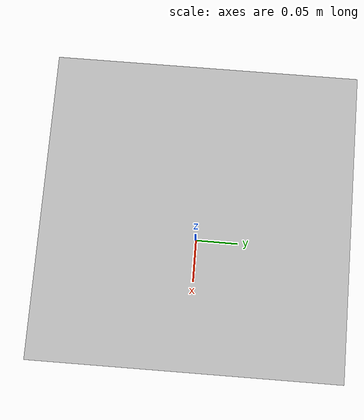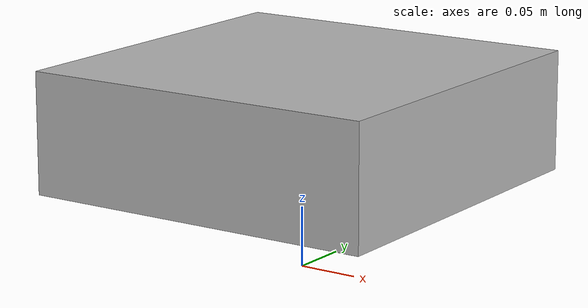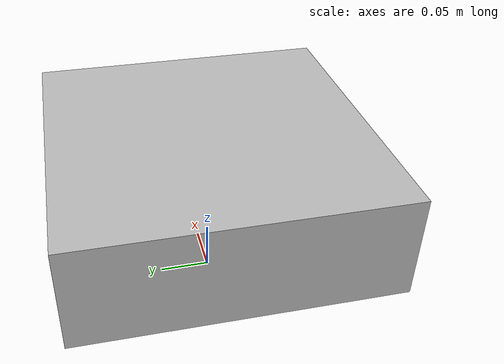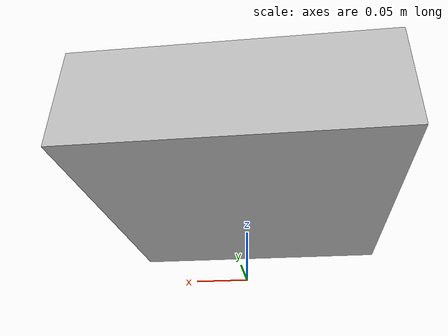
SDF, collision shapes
<?xml version="1.0"?>
<sdf version="1.6">
<model name="rmf_unipilot">
    <self_collide>true</self_collide>
    <pose>0 0 0.121078 0 0 0</pose>

    <frame name="rmf_unipilot" attached_to='base_link'>
        <pose>0 0 0 0 0 0</pose>
    </frame>

    <link name="base_link">
        <pose frame="">0 0 0 0 -0 0</pose>
        <inertial>
            <pose frame="">0 0 0 0 -0 0</pose>
            <mass>2.10</mass>
            <inertia>
                <ixx>0.017</ixx>
                <ixy>0</ixy>
                <ixz>0</ixz>
                <iyy>0.018</iyy>
                <iyz>0</iyz>
                <izz>0.028</izz>
            </inertia>
        </inertial>
        <collision name="base_link_inertia_collision">
            <pose frame="">0 0 0 0 -0 0</pose>
            <geometry>
                <box><size>0.3 0.3 0.1</size></box>
            </geometry>
        </collision>
        <visual name="base_link_inertia_visual">
            <pose frame="">0 0 0 0 -0 0</pose>
            <geometry>
                <mesh>
                    <scale>1 1 1</scale>
                    <uri>meshes/rmf.dae</uri>
                </mesh>
            </geometry>
        </visual>

        <visual name="laser_visual">
            <pose>-0.15 0 0.05 0 1.57 3.1416</pose>
            <geometry>
                <cylinder>
                    <radius>0.03</radius>
                    <length>0.1</length>
                </cylinder>
            </geometry>
        </visual>
        <sensor name="rgb_cam" type="camera">
            <pose>0.18 0 -0.025 0 0 0</pose>
            <always_on>1</always_on>
            <update_rate>20</update_rate>
            <camera name="rgb_cam">
                <horizontal_fov>1.52</horizontal_fov>
                <image>
                    <width>480</width>
                    <height>270</height>
                    <format>R8G8B8</format>
                </image>
                <clip>
                    <near>0.02</near>
                    <far>20</far>
                </clip>
                <optical_frame_id>rmf_unipilot/base_link/rgb_cam/optical</optical_frame_id>
            </camera>
        </sensor>
        <sensor name="depth_cam" type="depth_camera">
            <pose>0.18 0 -0.025 0 0 0</pose>
            <always_on>1</always_on>
            <update_rate>20</update_rate>
            <camera name="depth_cam">
                <horizontal_fov>1.52</horizontal_fov>
                <image>
                    <width>480</width>
                    <height>270</height>
                    <format>R_FLOAT32</format>
                </image>
                <clip>
                    <near>0.02</near>
                    <far>20</far>
                </clip>
                <optical_frame_id>rmf_unipilot/base_link/depth_cam/optical</optical_frame_id>
            </camera>
        </sensor>
        <sensor name="lidar" type="gpu_ray">
            <pose>-0.15 0 0.05 0 1.57 3.1416</pose>
            <always_on>1</always_on>
            <update_rate>10</update_rate>
            <lidar>
                <scan>
                    <horizontal>
                        <samples>500</samples>
                        <resolution>1</resolution>
                        <min_angle>-3.1416</min_angle>
                        <max_angle>3.1416</max_angle>
                    </horizontal>
                    <vertical>
                        <samples>48</samples>
                        <resolution>1</resolution>
                        <min_angle>0</min_angle>
                        <max_angle>1.5708</max_angle>
                    </vertical>
                </scan>
                <range>
                    <min>0.17</min>
                    <max>100</max>
                    <resolution>0.005</resolution>
                </range>
                <noise>
                    <type>gaussian</type>
                    <mean>0</mean>
                    <stddev>0.001</stddev>
                </noise>
            </lidar>
        </sensor>
        <sensor name="contact" type="contact">
            <always_on>1</always_on>
            <update_rate>50</update_rate>
            <contact>
                <collision>base_link_inertia_collision</collision>
                <topic>/rmf_unipilot/contact</topic>
            </contact>
        </sensor>
        <sensor name="imu" type="imu">
            <always_on>1</always_on>
            <update_rate>200</update_rate>
            <imu>
                <angular_velocity>
                    <x><noise type="gaussian"><mean>0</mean><stddev>0.00004</stddev></noise></x>
                    <y><noise type="gaussian"><mean>0</mean><stddev>0.00004</stddev></noise></y>
                    <z><noise type="gaussian"><mean>0</mean><stddev>0.00004</stddev></noise></z>
                </angular_velocity>
                <linear_acceleration>
                    <x><noise type="gaussian"><mean>0</mean><stddev>0.01</stddev></noise></x>
                    <y><noise type="gaussian"><mean>0</mean><stddev>0.01</stddev></noise></y>
                    <z><noise type="gaussian"><mean>0</mean><stddev>0.01</stddev></noise></z>
                </linear_acceleration>
            </imu>
        </sensor>
    </link>

    <!-- rotors -->
    <link name="rotor_0">
        <pose frame="">0.09 -0.09 -0.005 0 0 0</pose>
        <inertial>
            <pose frame="">0 0 0 0 -0 0</pose>
            <mass>0.005</mass>
            <inertia>
                <ixx>9.75e-07</ixx>
                <ixy>0</ixy>
                <ixz>0</ixz>
                <iyy>8.13545e-05</iyy>
                <iyz>0</iyz>
                <izz>8.22545e-05</izz>
            </inertia>
        </inertial>
        <collision name="rotor_0_collision">
            <pose frame="">0 0 0 0 -0 0</pose>
            <geometry>
                <cylinder>
                    <length>0.005</length>
                    <radius>0.06</radius>
                </cylinder>
            </geometry>
            <surface>
                <contact>
                    <ode />
                </contact>
                <friction>
                    <ode />
                </friction>
            </surface>
        </collision>
        <visual name="rotor_0_visual">
            <pose frame="">0 0 0 0 -0 0</pose>
            <geometry>
                <mesh>
                    <scale>1 1 1</scale>
                    <uri>meshes/propeller_ccw.dae</uri>
                </mesh>
            </geometry>
            <material>
                <diffuse>1 0 0 1</diffuse>
                <script>
                    <name>Gazebo/Red</name>
                    <uri>file://media/materials/scripts/gazebo.material</uri>
                </script>
            </material>
            <cast_shadows>0</cast_shadows>
        </visual>
        <gravity>1</gravity>
        <velocity_decay />
    </link>
    <joint name="rotor_0_joint" type="revolute">
        <child>rotor_0</child>
        <parent>base_link</parent>
        <axis>
            <xyz>0 0 1</xyz>
            <limit>
                <lower>-1e+16</lower>
                <upper>1e+16</upper>
            </limit>
            <dynamics>
                <spring_reference>0</spring_reference>
                <spring_stiffness>0</spring_stiffness>
            </dynamics>
            <use_parent_model_frame>1</use_parent_model_frame>
        </axis>
    </joint>
    <link name="rotor_1">
        <pose frame="">-0.09 0.09 0.045 0 0 0</pose>
        <inertial>
            <pose frame="">0 0 0 0 -0 0</pose>
            <mass>0.005</mass>
            <inertia>
                <ixx>9.75e-07</ixx>
                <ixy>0</ixy>
                <ixz>0</ixz>
                <iyy>8.13545e-05</iyy>
                <iyz>0</iyz>
                <izz>8.22545e-05</izz>
            </inertia>
        </inertial>
        <collision name="rotor_1_collision">
            <pose frame="">0 0 0 0 -0 0</pose>
            <geometry>
                <cylinder>
                    <length>0.005</length>
                    <radius>0.06</radius>
                </cylinder>
            </geometry>
            <surface>
                <contact>
                    <ode />
                </contact>
                <friction>
                    <ode />
                </friction>
            </surface>
        </collision>
        <visual name="rotor_1_visual">
            <pose frame="">0 0 0 0 -0 0</pose>
            <geometry>
                <mesh>
                    <scale>1 1 1</scale>
                    <uri>meshes/propeller_ccw.dae</uri>
                </mesh>
            </geometry>
            <material>
                <diffuse>0 0 1 1</diffuse>
                <script>
                    <name>Gazebo/Blue</name>
                    <uri>file://media/materials/scripts/gazebo.material</uri>
                </script>
            </material>
            <cast_shadows>0</cast_shadows>
        </visual>
        <gravity>1</gravity>
        <velocity_decay />
    </link>
    <joint name="rotor_1_joint" type="revolute">
        <child>rotor_1</child>
        <parent>base_link</parent>
        <axis>
            <xyz>0 0 1</xyz>
            <limit>
                <lower>-1e+16</lower>
                <upper>1e+16</upper>
            </limit>
            <dynamics>
                <spring_reference>0</spring_reference>
                <spring_stiffness>0</spring_stiffness>
            </dynamics>
            <use_parent_model_frame>1</use_parent_model_frame>
        </axis>
    </joint>
    <link name="rotor_2">
        <pose frame="">0.09 0.09 -0.005 0 0 0</pose>
        <inertial>
            <pose frame="">0 0 0 0 -0 0</pose>
            <mass>0.005</mass>
            <inertia>
                <ixx>9.75e-07</ixx>
                <ixy>0</ixy>
                <ixz>0</ixz>
                <iyy>8.13545e-05</iyy>
                <iyz>0</iyz>
                <izz>8.22545e-05</izz>
            </inertia>
        </inertial>
        <collision name="rotor_2_collision">
            <pose frame="">0 0 0 0 -0 0</pose>
            <geometry>
                <cylinder>
                    <length>0.005</length>
                    <radius>0.06</radius>
                </cylinder>
            </geometry>
            <surface>
                <contact>
                    <ode />
                </contact>
                <friction>
                    <ode />
                </friction>
            </surface>
        </collision>
        <visual name="rotor_2_visual">
            <pose frame="">0 0 0 0 -0 0</pose>
            <geometry>
                <mesh>
                    <scale>1 1 1</scale>
                    <uri>meshes/propeller_cw.dae</uri>
                </mesh>
            </geometry>
            <material>
                <diffuse>1 0 0 1</diffuse>
                <script>
                    <name>Gazebo/Red</name>
                    <uri>file://media/materials/scripts/gazebo.material</uri>
                </script>
            </material>
            <cast_shadows>0</cast_shadows>
        </visual>
        <gravity>1</gravity>
        <velocity_decay />
    </link>
    <joint name="rotor_2_joint" type="revolute">
        <child>rotor_2</child>
        <parent>base_link</parent>
        <axis>
            <xyz>0 0 1</xyz>
            <limit>
                <lower>-1e+16</lower>
                <upper>1e+16</upper>
            </limit>
            <dynamics>
                <spring_reference>0</spring_reference>
                <spring_stiffness>0</spring_stiffness>
            </dynamics>
            <use_parent_model_frame>1</use_parent_model_frame>
        </axis>
    </joint>
    <link name="rotor_3">
        <pose frame="">-0.09 -0.09 0.045 0 0 0</pose>
        <inertial>
            <pose frame="">0 0 0 0 -0 0</pose>
            <mass>0.005</mass>
            <inertia>
                <ixx>9.75e-07</ixx>
                <ixy>0</ixy>
                <ixz>0</ixz>
                <iyy>8.13545e-05</iyy>
                <iyz>0</iyz>
                <izz>8.22545e-05</izz>
            </inertia>
        </inertial>
        <collision name="rotor_3_collision">
            <pose frame="">0 0 0 0 -0 0</pose>
            <geometry>
                <cylinder>
                    <length>0.005</length>
                    <radius>0.06</radius>
                </cylinder>
            </geometry>
            <surface>
                <contact>
                    <ode />
                </contact>
                <friction>
                    <ode />
                </friction>
            </surface>
        </collision>
        <visual name="rotor_3_visual">
            <pose frame="">0 0 0 0 -0 0</pose>
            <geometry>
                <mesh>
                    <scale>1 1 1</scale>
                    <uri>meshes/propeller_cw.dae</uri>
                </mesh>
            </geometry>
            <material>
                <diffuse>0 0 1 1</diffuse>
                <script>
                    <name>Gazebo/Blue</name>
                    <uri>file://media/materials/scripts/gazebo.material</uri>
                </script>
            </material>
            <cast_shadows>0</cast_shadows>
        </visual>
        <gravity>1</gravity>
        <velocity_decay />
    </link>
    <joint name="rotor_3_joint" type="revolute">
        <child>rotor_3</child>
        <parent>base_link</parent>
        <axis>
            <xyz>0 0 1</xyz>
            <limit>
                <lower>-1e+16</lower>
                <upper>1e+16</upper>
            </limit>
            <dynamics>
                <spring_reference>0</spring_reference>
                <spring_stiffness>0</spring_stiffness>
            </dynamics>
            <use_parent_model_frame>1</use_parent_model_frame>
        </axis>
    </joint>

    <!-- plugins -->

    <plugin filename="libgz-sim-pose-publisher-system.so" name="gz::sim::systems::PosePublisher">
        <publish_link_pose>true</publish_link_pose>
        <publish_sensor_pose>true</publish_sensor_pose>
        <publish_collision_pose>false</publish_collision_pose>
        <publish_visual_pose>false</publish_visual_pose>
        <publish_nested_model_pose>true</publish_nested_model_pose>
        <use_pose_vector_msg>true</use_pose_vector_msg>
        <static_publisher>false</static_publisher>
        <update_frequency>200</update_frequency>
    </plugin>

    <plugin filename="libgz-sim-odometry-publisher-system.so" name="gz::sim::systems::OdometryPublisher">
        <odom_frame>rmf_unipilot/odom</odom_frame>
        <robot_base_frame>rmf_unipilot_odom</robot_base_frame>
        <dimensions>3</dimensions>
        <odom_publish_frequency>100</odom_publish_frequency>
    </plugin>

    <plugin filename="libgz-sim-multicopter-motor-model-system.so" name="gz::sim::systems::MulticopterMotorModel">
        <robotNamespace>model/rmf_unipilot</robotNamespace>
        <commandSubTopic>cmd/motor</commandSubTopic>
        <jointName>rotor_0_joint</jointName>
        <linkName>rotor_0</linkName>
        <turningDirection>ccw</turningDirection>
        <timeConstantUp>0.003</timeConstantUp>
        <timeConstantDown>0.0018</timeConstantDown>
        <maxRotVelocity>750.0</maxRotVelocity>
        <motorConstant>0.02246</motorConstant>
        <momentConstant>0.016754</momentConstant>
        <motorNumber>0</motorNumber>
        <rotorDragCoefficient>2.0673e-04</rotorDragCoefficient>
        <rollingMomentCoefficient>0</rollingMomentCoefficient>
        <motorSpeedPubTopic>motor_speed/0</motorSpeedPubTopic>
        <rotorVelocitySlowdownSim>0.5</rotorVelocitySlowdownSim>
        <motorType>velocity</motorType>
    </plugin>

    <plugin filename="libgz-sim-multicopter-motor-model-system.so" name="gz::sim::systems::MulticopterMotorModel">
        <robotNamespace>model/rmf_unipilot</robotNamespace>
        <commandSubTopic>cmd/motor</commandSubTopic>
        <jointName>rotor_1_joint</jointName>
        <linkName>rotor_1</linkName>
        <turningDirection>ccw</turningDirection>
        <timeConstantUp>0.003</timeConstantUp>
        <timeConstantDown>0.0018</timeConstantDown>
        <maxRotVelocity>750.0</maxRotVelocity>
        <motorConstant>0.02246</motorConstant>
        <momentConstant>0.016754</momentConstant>
        <motorNumber>1</motorNumber>
        <rotorDragCoefficient>2.0673e-04</rotorDragCoefficient>
        <rollingMomentCoefficient>0</rollingMomentCoefficient>
        <motorSpeedPubTopic>motor_speed/1</motorSpeedPubTopic>
        <rotorVelocitySlowdownSim>0.5</rotorVelocitySlowdownSim>
        <motorType>velocity</motorType>
    </plugin>

    <plugin filename="libgz-sim-multicopter-motor-model-system.so" name="gz::sim::systems::MulticopterMotorModel">
        <robotNamespace>model/rmf_unipilot</robotNamespace>
        <commandSubTopic>cmd/motor</commandSubTopic>
        <jointName>rotor_2_joint</jointName>
        <linkName>rotor_2</linkName>
        <turningDirection>cw</turningDirection>
        <timeConstantUp>0.003</timeConstantUp>
        <timeConstantDown>0.0018</timeConstantDown>
        <maxRotVelocity>750.0</maxRotVelocity>
        <motorConstant>0.02246</motorConstant>
        <momentConstant>0.016754</momentConstant>
        <motorNumber>2</motorNumber>
        <rotorDragCoefficient>2.0673e-04</rotorDragCoefficient>
        <rollingMomentCoefficient>0</rollingMomentCoefficient>
        <motorSpeedPubTopic>motor_speed/2</motorSpeedPubTopic>
        <rotorVelocitySlowdownSim>0.5</rotorVelocitySlowdownSim>
        <motorType>velocity</motorType>
    </plugin>

    <plugin filename="libgz-sim-multicopter-motor-model-system.so" name="gz::sim::systems::MulticopterMotorModel">
        <robotNamespace>model/rmf_unipilot</robotNamespace>
        <commandSubTopic>cmd/motor</commandSubTopic>
        <jointName>rotor_3_joint</jointName>
        <linkName>rotor_3</linkName>
        <turningDirection>cw</turningDirection>
        <timeConstantUp>0.003</timeConstantUp>
        <timeConstantDown>0.0018</timeConstantDown>
        <maxRotVelocity>750.0</maxRotVelocity>
        <motorConstant>0.02246</motorConstant>
        <momentConstant>0.016754</momentConstant>
        <motorNumber>3</motorNumber>
        <rotorDragCoefficient>2.0673e-04</rotorDragCoefficient>
        <rollingMomentCoefficient>0</rollingMomentCoefficient>
        <motorSpeedPubTopic>motor_speed/3</motorSpeedPubTopic>
        <rotorVelocitySlowdownSim>0.5</rotorVelocitySlowdownSim>
        <motorType>velocity</motorType>
    </plugin>

    <plugin filename="libgz-sim-multicopter-acceleration-control-system.so" name="gz::sim::systems::MulticopterAccelerationControl">
        <robotNamespace>model/rmf_unipilot</robotNamespace>
        <commandSubTopic>cmd/acc</commandSubTopic>
        <motorControlPubTopic>command/motor_speed</motorControlPubTopic>
        <enableSubTopic>enable</enableSubTopic>
        <comLinkName>base_link</comLinkName>
        <positionGain>0 0 0</positionGain>
        <velocityGain>0 0 0</velocityGain>
        <attitudeGain>30 30 3</attitudeGain>
        <angularRateGain>3 3 0.3</angularRateGain>
        <maximumLinearVelocity>10 10 10</maximumLinearVelocity>
        <maximumLinearAcceleration>30 30 30</maximumLinearAcceleration>
        <maximumAngularVelocity>30 30 5</maximumAngularVelocity>
        <linearVelocityNoiseMean>0 0 0</linearVelocityNoiseMean>
        <!-- linearVelocityNoiseStdDev based on error values reported in the paper Shen et. al., -->
        <!-- Vision-Based State Estimation and Trajectory Control Towards High-Speed Flight with a Quadrotor -->
        <!-- http://citeseerx.ist.psu.edu/viewdoc/download?doi=10.1.1.490.7958&rep=rep1&type=pdf -->
        <linearVelocityNoiseStdDev>0.00001 0.00001261 0.00000947</linearVelocityNoiseStdDev>
        <angularVelocityNoiseMean>0 0 0</angularVelocityNoiseMean>
        <!-- angularVelocityNoiseStdDev values based on ADIS16448's Rate Noise Density with a sample  -->
        <!-- time of 0.004 ms. -->
        <angularVelocityNoiseStdDev>0.00004 0.00004 0.00004</angularVelocityNoiseStdDev>

        <rotorConfiguration>
            <rotor>
                <jointName>rotor_0_joint</jointName>
                <forceConstant>0.02246</forceConstant>
                <momentConstant>1.6754e-2</momentConstant>
                <direction>1</direction>
            </rotor>
            <rotor>
                <jointName>rotor_1_joint</jointName>
                <forceConstant>0.02246</forceConstant>
                <momentConstant>1.6754e-2</momentConstant>
                <direction>1</direction>
            </rotor>
            <rotor>
                <jointName>rotor_2_joint</jointName>
                <forceConstant>0.02246</forceConstant>
                <momentConstant>1.6754e-2</momentConstant>
                <direction>-1</direction>
            </rotor>
            <rotor>
                <jointName>rotor_3_joint</jointName>
                <forceConstant>0.02246</forceConstant>
                <momentConstant>1.6754e-2</momentConstant>
                <direction>-1</direction>
            </rotor>
        </rotorConfiguration>
    </plugin>

</model>
</sdf>
